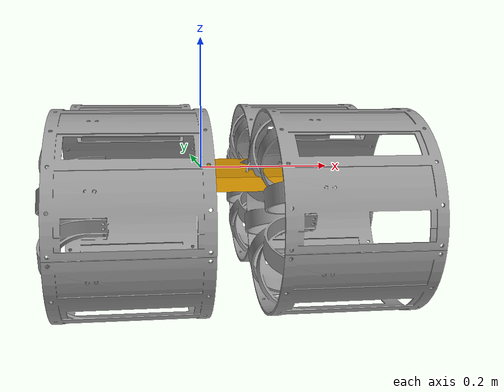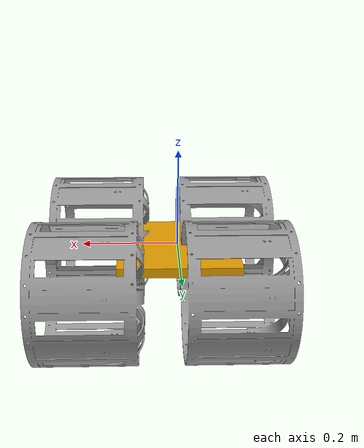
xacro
<?xml version="1.0"?>
<robot  xmlns:xacro="http://ros.org/wiki/xacro"
        name="rover" >

    <xacro:include filename="$(find rover_gazebo)/urdf/wheel.urdf.xacro" />
    <xacro:arg name="mesh_enabled" default="false" />
    <xacro:arg name="robot_namespace" default="/"/>

    <link   name = "base_link">
        <inertial>
            <origin xyz="0 0 0" rpy="0 0 0"/>
            <mass value="45.2"/>
            <inertia ixx="1.7724" ixy="0.0" ixz="0.0"
                    iyy="0.141558" iyz="-0.0"
                    izz="0.179826"/>
        </inertial>
        <visual>

                <origin xyz="0 0 -0.01" rpy="0 0 0" />
                <geometry>
                    <box size="0.25 0.25 0.02" />
                </geometry>
        </visual>
        <collision>
            <origin xyz="0 0 -0.01" rpy="0 0 0" />
            <geometry>
                <box size="0.25 0.25 0.02" />
            </geometry>
        </collision>
    </link>

    <link name = "base_footprint"/>

    <joint name = "base_joint"  type = "fixed">
        <parent link="base_footprint"/>
        <child link="base_link"/>
        <origin xyz="0.0 0.0 0.0" rpy="0 0 0" />
        <axis xyz="0 1 0" rpy="0 0 0" />
    </joint>

    <xacro:wheel wheel_prefix="left" parent_link="base_link" >
        <origin xyz="0.15 0.14 -0.045" rpy="0 0 0" />
    </xacro:wheel>

    <xacro:wheel wheel_prefix="right" parent_link="base_link" >
        <origin xyz="0.14 -0.14 -0.045" rpy="0 0 0" />
    </xacro:wheel>

    <xacro:wheel wheel_prefix="rear_left" parent_link="base_link" >
        <origin xyz="-0.14 0.14 -0.045" rpy="0 0 0" />
    </xacro:wheel>

    <xacro:wheel wheel_prefix="rear_right" parent_link="base_link" >
        <origin xyz="-0.14 -0.14 -0.045" rpy="0 0 0" />
    </xacro:wheel>

    <gazebo>
        <plugin name="gazebo_ros_control" filename="libgazebo_ros_control.so">
            <robotNamespace>/</robotNamespace>
        </plugin>
    </gazebo>

</robot>

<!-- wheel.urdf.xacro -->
<robot name="wheel" xmlns:xacro="http://ros.org/wiki/xacro" >
  	<xacro:property name="wheel_kp" value="10000000.0" />
    <xacro:property name="wheel_kd" value="1.0" />
    <xacro:property name="wheel_mu1" value="5" />
    <xacro:property name="wheel_mu2" value="5" />
	<xacro:property name="M_PI" value="3.14159265" />

<xacro:macro name="wheel" params="wheel_prefix parent_link *joint_pose">
		<!-- Wheel Link -->
		<link name="${wheel_prefix}_wheel_link">
			<inertial>
				<mass value="1.2" />
				<origin xyz="0 0 0" />
				<inertia  ixx="0.142" ixy="0.0003118" ixz="0.0000392177" iyy="0.14155823" iyz="-0.000062645" izz="1.3729" />
			</inertial>
			<visual>
				<origin xyz="0 0 0" rpy="${M_PI/2} 0 0" />
				<geometry>
					<mesh filename="package://rover_gazebo/meshes/full_wheel_assembly_fixed.dae"/>
				</geometry>
			</visual>
			<collision>
				<origin xyz="0.03 0 0" rpy="0 ${M_PI/2} 0" />
				<geometry>
						<cylinder length="0.2" radius="0.14" />
				</geometry>
			</collision>
		</link>

		<!-- Wheel Joint -->
		<joint name="${wheel_prefix}_wheel" type="continuous">
			<parent link="${parent_link}"/>
			<child link="${wheel_prefix}_wheel_link"/>
			<xacro:insert_block name="joint_pose"/>
			<xacro:if value="${wheel_prefix == 'left'}">
				<axis xyz="-1 0 0" rpy="0 0 0" />
			</xacro:if>
			<xacro:if value="${wheel_prefix == 'right'}">
				<axis xyz="1 0 0" rpy="0 0 0" />
			</xacro:if>
			<xacro:if value="${wheel_prefix == 'rear_left'}">
				<axis xyz="-1 0 0" rpy="0 0 0" />
			</xacro:if>
			<xacro:if value="${wheel_prefix == 'rear_right'}">
				<axis xyz="1 0 0" rpy="0 0 0" />
			</xacro:if>
			<limit effort="300" velocity="50.0"/>
		</joint>

		<gazebo reference="${wheel_prefix}_wheel_link">
			<mu1 value="${wheel_mu1}"/>
			<mu2 value="${wheel_mu2}"/>
			<kp value ="${wheel_kp}"/>
    		<kd value ="${wheel_kd}"/>
			<material>Gazebo/Grey</material>
		</gazebo>

		<transmission name="${wheel_prefix}_wheel_trans">
			<type>transmission_interface/SimpleTransmission</type>
			<actuator name="${wheel_prefix}_wheel_motor">
				<mechanicalReduction>1</mechanicalReduction>
			</actuator>
			<joint name="${wheel_prefix}_wheel">
				<hardwareInterface>hardware_interface/VelocityJointInterface</hardwareInterface>
			</joint>
		</transmission>

</xacro:macro>

</robot>
